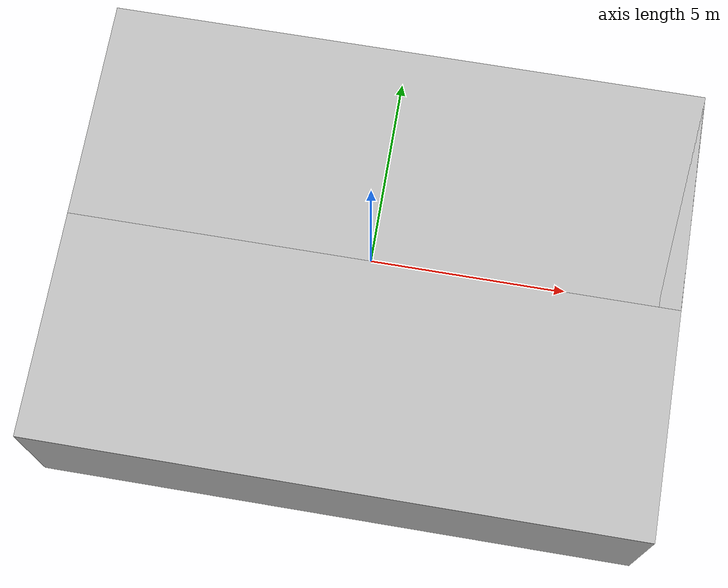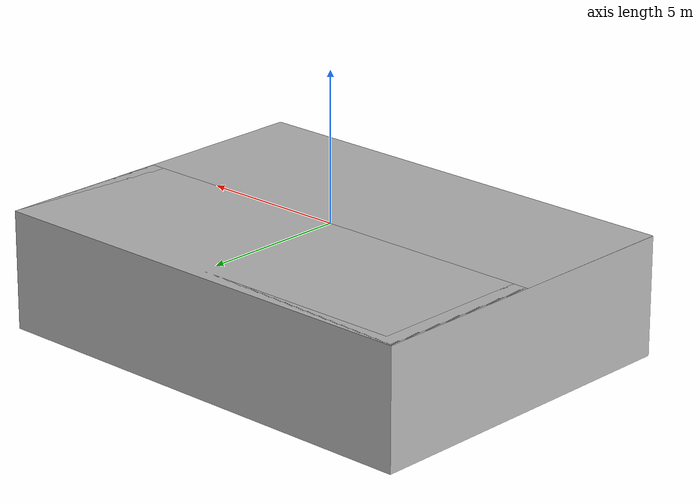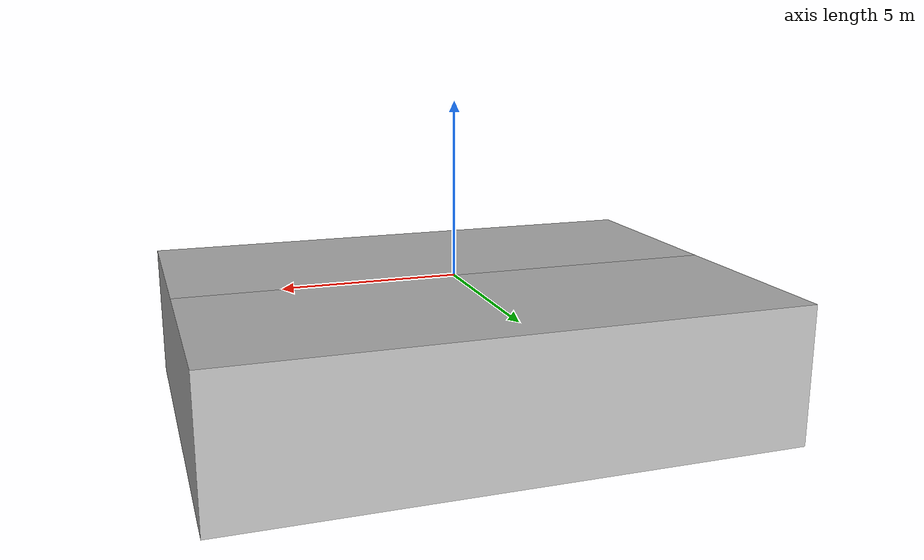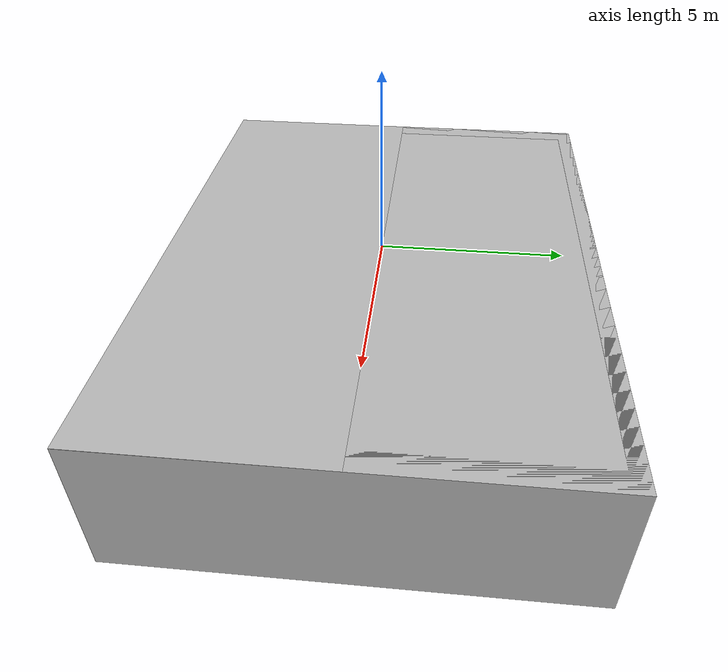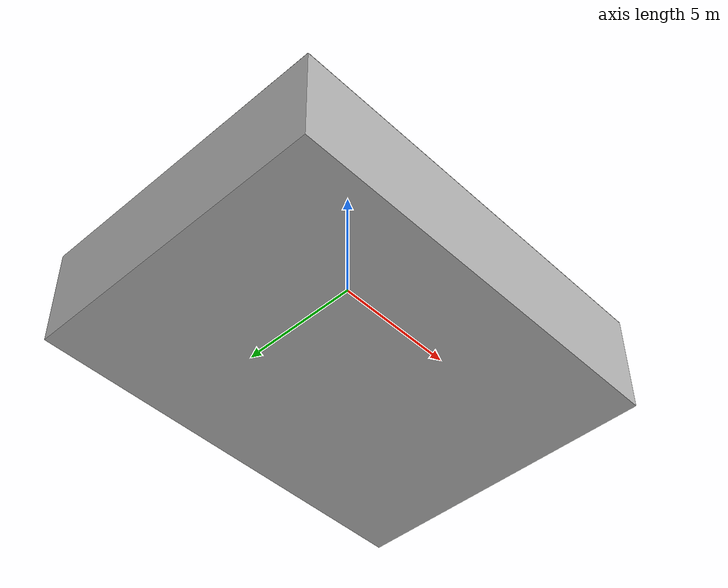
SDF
<?xml version="1.0" ?>
<sdf version="1.5">
<model name="pool">
  <static>true</static>
  <link name="pool_link">

  <visual name="ocean_surface">
    <pose>0 0 0 0 0 0</pose>
    <cast_shadows>false</cast_shadows>
    <geometry>
      <mesh>
        <uri>file://Media/models/sea_surface_16m_x_12m.dae</uri>
        <scale>1 1 1</scale>
      </mesh>
    </geometry>
    <material>
      <script>
        <uri>file://Media/materials/scripts/waves.material</uri>
        <name>UUVSimulator/SimpleWaves</name>
      </script>
    </material>
  </visual>

  <visual name="ocean_below">
    <pose>0 0 0 3.14 0 0</pose>
    <cast_shadows>false</cast_shadows>
    <geometry>
      <mesh>
        <uri>file://Media/models/sea_surface_16m_x_12m.dae</uri>
        <scale>1 1 1</scale>
      </mesh>
    </geometry>
    <material>
      <script>
        <uri>file://Media/materials/scripts/water.material</uri>
        <name>UUVSimulator/StaticWater</name>
      </script>
    </material>
  </visual>

    <visual name="floor">
        <pose>0 0 0 0 0 0</pose>

        <geometry>
          <mesh><uri>model://pool/meshes/pool.dae</uri><scale>1 1 1</scale></mesh>
        </geometry>

        <material>
          <script>
              <uri>file://Media/materials/scripts/swimming_pool.material</uri>
              <name>DutUUV/SwimmingPool</name>
          </script>
        </material>
    </visual>

    <collision name="floor">
        <pose>0 0 0 0 0 0</pose>
        <geometry>
          <mesh><uri>model://pool/meshes/pool.stl</uri><scale>1 1 1</scale></mesh>
        </geometry>
    </collision>

  </link>
</model>
</sdf>
